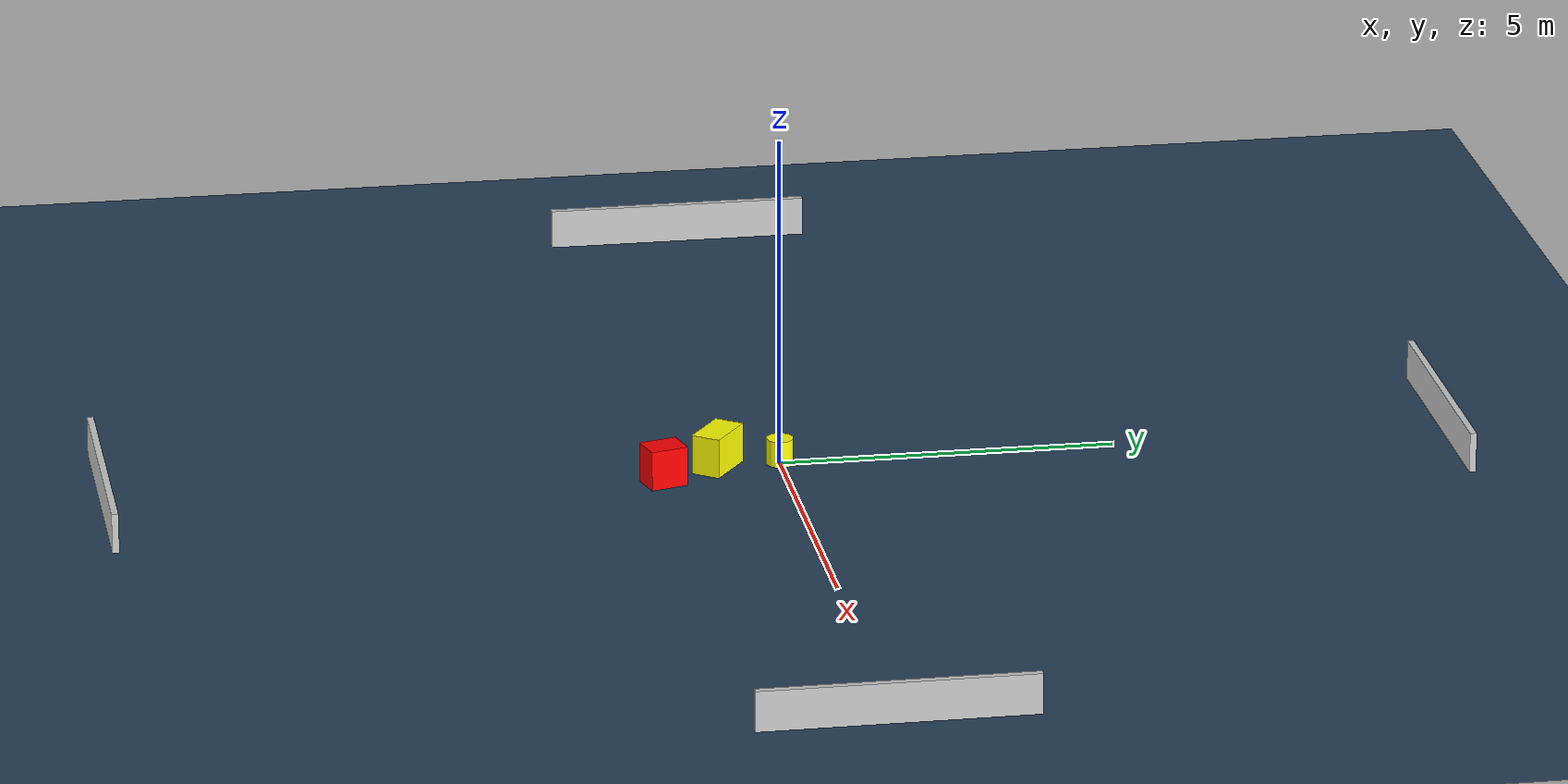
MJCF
<?xml version="1.0" ?>
<mujoco model="generated_environment">
  <option timestep="0.01" integrator="RK4" cone="elliptic"/>
  <default>
    <geom density="1"/>
  </default>
  <asset>
    <texture builtin="gradient" height="3072" name="skybox" rgb1="0.3 0.5 0.7" rgb2="0 0 0" type="skybox" width="512"/>
    <texture builtin="checker" height="300" name="groundplane" rgb1="0.2 0.3 0.4" rgb2="0.1 0.2 0.3" type="2d" width="300"/>
    <material name="groundplane" reflectance="0.2" texrepeat="5 5" texture="groundplane"/>
  </asset>
  <worldbody>
    <light dir="0 0 -1" directional="true" pos="0 0 1.5"/>
    <geom condim="3" friction="0.5 0.005 0.001" material="groundplane" name="floor" pos="0 0 0" size="0 0 0.05" type="plane"/>
    <body name="walls">
      <geom name="wall_1" condim="4" pos="-10.0 0.0 0.3" rgba="0.800000011920929 0.800000011920929 0.800000011920929 1.0" size="0.05 2.0 0.3" type="box"/>
      <geom name="wall_2" condim="4" pos="10.0 0.0 0.3" rgba="0.800000011920929 0.800000011920929 0.800000011920929 1.0" size="0.05 2.0 0.3" type="box"/>
      <geom name="wall_3" condim="4" pos="0.0 -10.0 0.3" rgba="0.800000011920929 0.800000011920929 0.800000011920929 1.0" size="2.0 0.05 0.3" type="box"/>
      <geom name="wall_4" condim="4" pos="0.0 10.0 0.3" rgba="0.800000011920929 0.800000011920929 0.800000011920929 1.0" size="2.0 0.05 0.3" type="box"/>
    </body>
    <body name="robot">
      <joint name="joint_x" type="slide" pos="0 0 0" axis="1 0 0"/>
      <joint name="joint_y" type="slide" pos="0 0 0" axis="0 1 0"/>
      <geom name="robot" type="cylinder" pos="0.0 0.0 0.2" size="0.2 0.2 0.0" mass="5.0" friction="1.0 0.005 0.0001" condim="4" rgba="1.0 1.0 0.0 1.0"/>
    </body>
    <body name="obstacle_1_movable">
      <geom name="obstacle_1_movable" condim="4" pos="0.01870482040353576 -0.9350691322404556 0.3" euler="0 0 54.38173071748938" friction="0.0 0.005 0.001" rgba="1.0 1.0 0.0 1.0" size="0.2226848881933165 0.39519705413207284 0.3" type="box" mass="0.1"/>
      <joint type="free"/>
    </body>
    <body name="obstacle_2_static">
      <geom name="obstacle_2_static" condim="4" pos="0.5259305969757033 -1.8129328104164473 0.3" euler="0 0 195.41133358424904" friction="0.0 0.005 0.001" rgba="1.0 0.0 0.0 1.0" size="0.2249013555142214 0.2874434558725192 0.3" type="box"/>
    </body>
  </worldbody>
  <actuator>
    <motor name="actuator_x" joint="joint_x" gear="1" ctrlrange="-1 1"/>
    <motor name="actuator_y" joint="joint_y" gear="1" ctrlrange="-1 1"/>
  </actuator>
</mujoco>
